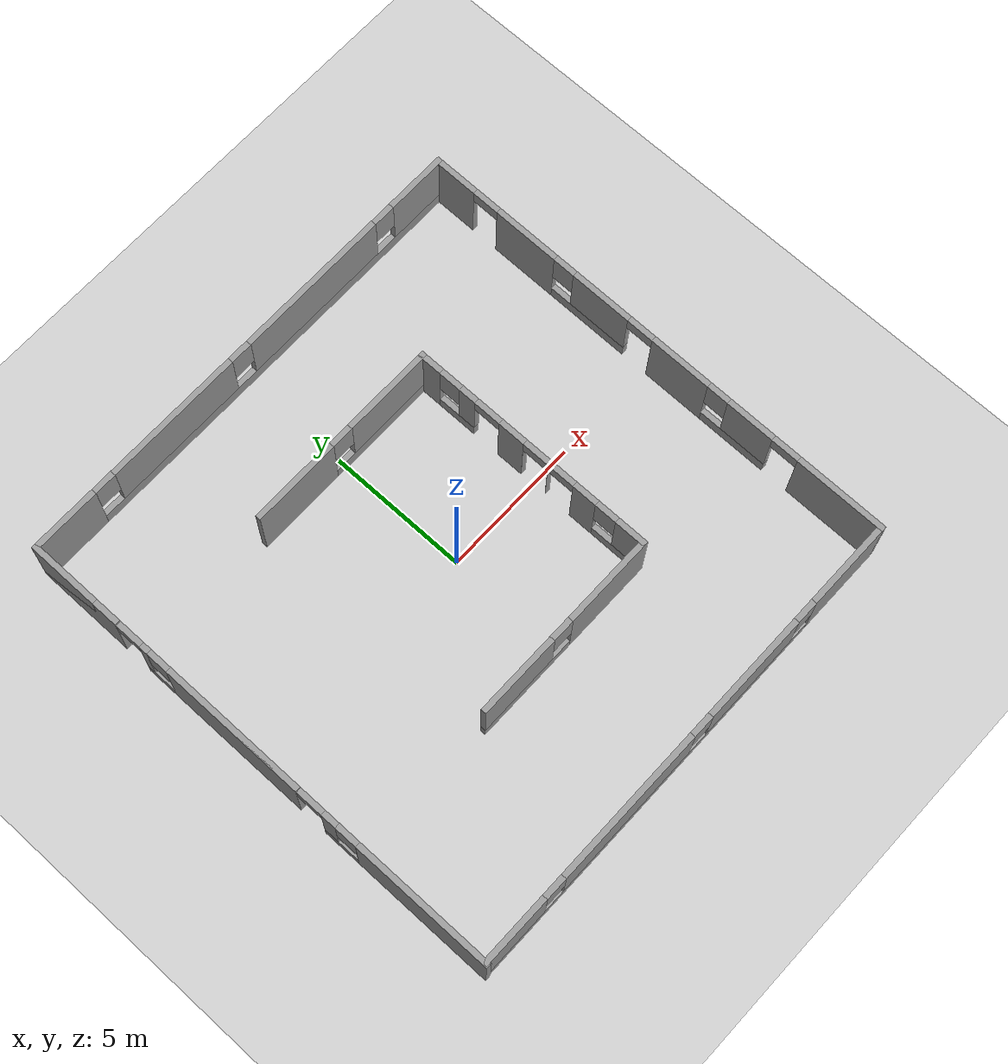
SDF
<sdf version="1.4">
 <world name="default">
  <light name="sun" type="directional">
   <pose>0 0 10 0 -0 0</pose>
   <diffuse>0.8 0.8 0.8 1</diffuse>
   <specular>0.2 0.2 0.2 1</specular>
   <attenuation>
    <range>1000</range>
    <constant>0.9</constant>
    <linear>0.01</linear>
    <quadratic>0.001</quadratic>
   </attenuation>
   <direction>-0.5 0.1 -0.9</direction>
  </light>
  <model name="ground_plane">
   <static>1</static>
   <link name="link">
    <collision name="collision">
     <geometry><plane><normal>0 0 1</normal><size>100 100</size></plane></geometry>
     <surface><friction><ode><mu>100</mu><mu2>50</mu2></ode></friction></surface>
    </collision>
    <visual name="visual">
     <cast_shadows>0</cast_shadows>
     <geometry><plane><normal>0 0 1</normal><size>100 100</size></plane></geometry>
     <material>
      <script><uri>file://media/materials/scripts/gazebo.material</uri><name>Gazebo/Grey</name></script>
     </material>
    </visual>
    <velocity_decay><linear>0</linear><angular>0</angular></velocity_decay>
   </link>
  </model>
  <physics type="ode">
   <max_step_size>0.001</max_step_size>
   <real_time_factor>1</real_time_factor>
   <real_time_update_rate>1000</real_time_update_rate>
   <gravity>0 0 -9.8</gravity>
  </physics>
  <scene><ambient>0.4 0.4 0.4 1</ambient><background>0.7 0.7 0.7 1</background><shadows>1</shadows></scene>
  <spherical_coordinates>
   <surface_model>EARTH_WGS84</surface_model>
   <latitude_deg>0</latitude_deg>
   <longitude_deg>0</longitude_deg>
   <elevation>0</elevation>
   <heading_deg>0</heading_deg>
  </spherical_coordinates>
  <model name="SalaSuporteFormacao">
   <link name="Wall_19">
    <pose>-8.72154 -0.096567 0 0 -0 1.5708</pose>
    <visual name="Wall_19_Visual_0">
     <pose>-6.64198 0 1.25 0 -0 0</pose>
     <geometry><box><size>5.04969 0.2 2.5</size></box></geometry>
     <material>
      <script><uri>file://media/materials/scripts/gazebo.material</uri><name>Gazebo/Grey</name></script>
     </material>
    </visual>
    <collision name="Wall_19_Collision_0">
     <geometry><box><size>5.04969 0.2 2.5</size></box></geometry>
     <pose>-6.64198 0 1.25 0 -0 0</pose>
    </collision>
    <visual name="Wall_19_Visual_1">
     <pose>0.863893 0 1.25 0 -0 0</pose>
     <geometry><box><size>5.24925 0.2 2.5</size></box></geometry>
     <material>
      <script><uri>file://media/materials/scripts/gazebo.material</uri><name>Gazebo/Grey</name></script>
     </material>
    </visual>
    <collision name="Wall_19_Collision_1">
     <geometry><box><size>5.24925 0.2 2.5</size></box></geometry>
     <pose>0.863893 0 1.25 0 -0 0</pose>
    </collision>
    <visual name="Wall_19_Visual_2">
     <pose>1.34936 0 1.25 0 -0 0</pose>
     <geometry><box><size>4.27831 0.2 2.5</size></box></geometry>
     <material>
      <script><uri>file://media/materials/scripts/gazebo.material</uri><name>Gazebo/Grey</name></script>
     </material>
    </visual>
    <collision name="Wall_19_Collision_2">
     <geometry><box><size>4.27831 0.2 2.5</size></box></geometry>
     <pose>1.34936 0 1.25 0 -0 0</pose>
    </collision>
    <visual name="Wall_19_Visual_3">
     <pose>7.3845 0 1.25 0 -0 0</pose>
     <geometry><box><size>3.56464 0.2 2.5</size></box></geometry>
     <material>
      <script><uri>file://media/materials/scripts/gazebo.material</uri><name>Gazebo/Grey</name></script>
     </material>
    </visual>
    <collision name="Wall_19_Collision_3">
     <geometry><box><size>3.56464 0.2 2.5</size></box></geometry>
     <pose>7.3845 0 1.25 0 -0 0</pose>
    </collision>
    <visual name="Wall_19_Visual_4">
     <pose>7.86997 0 1.25 0 -0 0</pose>
     <geometry><box><size>2.59371 0.2 2.5</size></box></geometry>
     <material>
      <script><uri>file://media/materials/scripts/gazebo.material</uri><name>Gazebo/Grey</name></script>
     </material>
    </visual>
    <collision name="Wall_19_Collision_4">
     <geometry><box><size>2.59371 0.2 2.5</size></box></geometry>
     <pose>7.86997 0 1.25 0 -0 0</pose>
    </collision>
    <visual name="Wall_19_Visual_5">
     <pose>-3.43893 0 0.25 0 -0 0</pose>
     <geometry><box><size>1.3564 0.2 0.5</size></box></geometry>
     <material>
      <script><uri>file://media/materials/scripts/gazebo.material</uri><name>Gazebo/Grey</name></script>
     </material>
    </visual>
    <collision name="Wall_19_Collision_5">
     <geometry><box><size>1.3564 0.2 0.5</size></box></geometry>
     <pose>-3.43893 0 0.25 0 -0 0</pose>
    </collision>
    <visual name="Wall_19_Visual_6">
     <pose>4.04535 0 0.25 0 -0 0</pose>
     <geometry><box><size>1.11367 0.2 0.5</size></box></geometry>
     <material>
      <script><uri>file://media/materials/scripts/gazebo.material</uri><name>Gazebo/Grey</name></script>
     </material>
    </visual>
    <collision name="Wall_19_Collision_6">
     <geometry><box><size>1.11367 0.2 0.5</size></box></geometry>
     <pose>4.04535 0 0.25 0 -0 0</pose>
    </collision>
    <visual name="Wall_19_Visual_7">
     <pose>4.04535 0 0.25 0 -0 0</pose>
     <geometry><box><size>1.11367 0.2 0.5</size></box></geometry>
     <material>
      <script><uri>file://media/materials/scripts/gazebo.material</uri><name>Gazebo/Grey</name></script>
     </material>
    </visual>
    <collision name="Wall_19_Collision_7">
     <geometry><box><size>1.11367 0.2 0.5</size></box></geometry>
     <pose>4.04535 0 0.25 0 -0 0</pose>
    </collision>
    <visual name="Wall_19_Visual_8">
     <pose>-3.03893 0 1.5 0 -0 0</pose>
     <geometry><box><size>0.556401 0.2 2</size></box></geometry>
     <material>
      <script><uri>file://media/materials/scripts/gazebo.material</uri><name>Gazebo/Grey</name></script>
     </material>
    </visual>
    <collision name="Wall_19_Collision_8">
     <geometry><box><size>0.556401 0.2 2</size></box></geometry>
     <pose>-3.03893 0 1.5 0 -0 0</pose>
    </collision>
    <visual name="Wall_19_Visual_9">
     <pose>-3.03893 0 1.5 0 -0 0</pose>
     <geometry><box><size>0.556401 0.2 2</size></box></geometry>
     <material>
      <script><uri>file://media/materials/scripts/gazebo.material</uri><name>Gazebo/Grey</name></script>
     </material>
    </visual>
    <collision name="Wall_19_Collision_9">
     <geometry><box><size>0.556401 0.2 2</size></box></geometry>
     <pose>-3.03893 0 1.5 0 -0 0</pose>
    </collision>
    <visual name="Wall_19_Visual_10">
     <pose>4.44535 0 1.5 0 -0 0</pose>
     <geometry><box><size>0.313667 0.2 2</size></box></geometry>
     <material>
      <script><uri>file://media/materials/scripts/gazebo.material</uri><name>Gazebo/Grey</name></script>
     </material>
    </visual>
    <collision name="Wall_19_Collision_10">
     <geometry><box><size>0.313667 0.2 2</size></box></geometry>
     <pose>4.44535 0 1.5 0 -0 0</pose>
    </collision>
    <visual name="Wall_19_Visual_11">
     <pose>4.44535 0 1.5 0 -0 0</pose>
     <geometry><box><size>0.313667 0.2 2</size></box></geometry>
     <material>
      <script><uri>file://media/materials/scripts/gazebo.material</uri><name>Gazebo/Grey</name></script>
     </material>
    </visual>
    <collision name="Wall_19_Collision_11">
     <geometry><box><size>0.313667 0.2 2</size></box></geometry>
     <pose>4.44535 0 1.5 0 -0 0</pose>
    </collision>
    <visual name="Wall_19_Visual_12">
     <pose>-3.71713 0 1.9 0 -0 0</pose>
     <geometry><box><size>0.8 0.2 1.2</size></box></geometry>
     <material>
      <script><uri>file://media/materials/scripts/gazebo.material</uri><name>Gazebo/Grey</name></script>
     </material>
    </visual>
    <collision name="Wall_19_Collision_12">
     <geometry><box><size>0.8 0.2 1.2</size></box></geometry>
     <pose>-3.71713 0 1.9 0 -0 0</pose>
    </collision>
    <visual name="Wall_19_Visual_13">
     <pose>3.88852 0 1.9 0 -0 0</pose>
     <geometry><box><size>0.8 0.2 1.2</size></box></geometry>
     <material>
      <script><uri>file://media/materials/scripts/gazebo.material</uri><name>Gazebo/Grey</name></script>
     </material>
    </visual>
    <collision name="Wall_19_Collision_13">
     <geometry><box><size>0.8 0.2 1.2</size></box></geometry>
     <pose>3.88852 0 1.9 0 -0 0</pose>
    </collision>
    <visual name="Wall_19_Visual_14">
     <pose>3.88852 0 1.9 0 -0 0</pose>
     <geometry><box><size>0.8 0.2 1.2</size></box></geometry>
     <material>
      <script><uri>file://media/materials/scripts/gazebo.material</uri><name>Gazebo/Grey</name></script>
     </material>
    </visual>
    <collision name="Wall_19_Collision_14">
     <geometry><box><size>0.8 0.2 1.2</size></box></geometry>
     <pose>3.88852 0 1.9 0 -0 0</pose>
    </collision>
    <visual name="Wall_19_Visual_15">
     <pose>-2.27526 0 2.25 0 -0 0</pose>
     <geometry><box><size>0.970934 0.2 0.5</size></box></geometry>
     <material>
      <script><uri>file://media/materials/scripts/gazebo.material</uri><name>Gazebo/Grey</name></script>
     </material>
    </visual>
    <collision name="Wall_19_Collision_15">
     <geometry><box><size>0.970934 0.2 0.5</size></box></geometry>
     <pose>-2.27526 0 2.25 0 -0 0</pose>
    </collision>
    <visual name="Wall_19_Visual_16">
     <pose>-2.27526 0 2.25 0 -0 0</pose>
     <geometry><box><size>0.970934 0.2 0.5</size></box></geometry>
     <material>
      <script><uri>file://media/materials/scripts/gazebo.material</uri><name>Gazebo/Grey</name></script>
     </material>
    </visual>
    <collision name="Wall_19_Collision_16">
     <geometry><box><size>0.970934 0.2 0.5</size></box></geometry>
     <pose>-2.27526 0 2.25 0 -0 0</pose>
    </collision>
    <visual name="Wall_19_Visual_17">
     <pose>5.08765 0 2.25 0 -0 0</pose>
     <geometry><box><size>0.970934 0.2 0.5</size></box></geometry>
     <material>
      <script><uri>file://media/materials/scripts/gazebo.material</uri><name>Gazebo/Grey</name></script>
     </material>
    </visual>
    <collision name="Wall_19_Collision_17">
     <geometry><box><size>0.970934 0.2 0.5</size></box></geometry>
     <pose>5.08765 0 2.25 0 -0 0</pose>
    </collision>
    <visual name="Wall_19_Visual_18">
     <pose>5.08765 0 2.25 0 -0 0</pose>
     <geometry><box><size>0.970934 0.2 0.5</size></box></geometry>
     <material>
      <script><uri>file://media/materials/scripts/gazebo.material</uri><name>Gazebo/Grey</name></script>
     </material>
    </visual>
    <collision name="Wall_19_Collision_18">
     <geometry><box><size>0.970934 0.2 0.5</size></box></geometry>
     <pose>5.08765 0 2.25 0 -0 0</pose>
    </collision>
    <velocity_decay><linear>0</linear><angular>0</angular></velocity_decay>
   </link>
   <link name="Wall_20">
    <pose>0.084499 8.97026 0 0 -0 0</pose>
    <visual name="Wall_20_Visual_0">
     <pose>-7.65437 0 1.25 0 -0 0</pose>
     <geometry><box><size>2.50333 0.2 2.5</size></box></geometry>
     <material>
      <script><uri>file://media/materials/scripts/gazebo.material</uri><name>Gazebo/Grey</name></script>
     </material>
    </visual>
    <collision name="Wall_20_Collision_0">
     <geometry><box><size>2.50333 0.2 2.5</size></box></geometry>
     <pose>-7.65437 0 1.25 0 -0 0</pose>
    </collision>
    <visual name="Wall_20_Visual_1">
     <pose>1.25166 0 0.25 0 -0 0</pose>
     <geometry><box><size>15.3087 0.2 0.5</size></box></geometry>
     <material>
      <script><uri>file://media/materials/scripts/gazebo.material</uri><name>Gazebo/Grey</name></script>
     </material>
    </visual>
    <collision name="Wall_20_Collision_1">
     <geometry><box><size>15.3087 0.2 0.5</size></box></geometry>
     <pose>1.25166 0 0.25 0 -0 0</pose>
    </collision>
    <visual name="Wall_20_Visual_2">
     <pose>-3.08991 0 1.5 0 -0 0</pose>
     <geometry><box><size>5.0256 0.2 2</size></box></geometry>
     <material>
      <script><uri>file://media/materials/scripts/gazebo.material</uri><name>Gazebo/Grey</name></script>
     </material>
    </visual>
    <collision name="Wall_20_Collision_2">
     <geometry><box><size>5.0256 0.2 2</size></box></geometry>
     <pose>-3.08991 0 1.5 0 -0 0</pose>
    </collision>
    <visual name="Wall_20_Visual_3">
     <pose>3.01888 0 1.5 0 -0 0</pose>
     <geometry><box><size>5.59198 0.2 2</size></box></geometry>
     <material>
      <script><uri>file://media/materials/scripts/gazebo.material</uri><name>Gazebo/Grey</name></script>
     </material>
    </visual>
    <collision name="Wall_20_Collision_3">
     <geometry><box><size>5.59198 0.2 2</size></box></geometry>
     <pose>3.01888 0 1.5 0 -0 0</pose>
    </collision>
    <visual name="Wall_20_Visual_4">
     <pose>7.76046 0 1.5 0 -0 0</pose>
     <geometry><box><size>2.29116 0.2 2</size></box></geometry>
     <material>
      <script><uri>file://media/materials/scripts/gazebo.material</uri><name>Gazebo/Grey</name></script>
     </material>
    </visual>
    <collision name="Wall_20_Collision_4">
     <geometry><box><size>2.29116 0.2 2</size></box></geometry>
     <pose>7.76046 0 1.5 0 -0 0</pose>
    </collision>
    <visual name="Wall_20_Visual_5">
     <pose>-6.00271 0 1.9 0 -0 0</pose>
     <geometry><box><size>0.8 0.2 1.2</size></box></geometry>
     <material>
      <script><uri>file://media/materials/scripts/gazebo.material</uri><name>Gazebo/Grey</name></script>
     </material>
    </visual>
    <collision name="Wall_20_Collision_5">
     <geometry><box><size>0.8 0.2 1.2</size></box></geometry>
     <pose>-6.00271 0 1.9 0 -0 0</pose>
    </collision>
    <visual name="Wall_20_Visual_6">
     <pose>-0.177107 0 1.9 0 -0 0</pose>
     <geometry><box><size>0.8 0.2 1.2</size></box></geometry>
     <material>
      <script><uri>file://media/materials/scripts/gazebo.material</uri><name>Gazebo/Grey</name></script>
     </material>
    </visual>
    <collision name="Wall_20_Collision_6">
     <geometry><box><size>0.8 0.2 1.2</size></box></geometry>
     <pose>-0.177107 0 1.9 0 -0 0</pose>
    </collision>
    <visual name="Wall_20_Visual_7">
     <pose>6.21487 0 1.9 0 -0 0</pose>
     <geometry><box><size>0.8 0.2 1.2</size></box></geometry>
     <material>
      <script><uri>file://media/materials/scripts/gazebo.material</uri><name>Gazebo/Grey</name></script>
     </material>
    </visual>
    <collision name="Wall_20_Collision_7">
     <geometry><box><size>0.8 0.2 1.2</size></box></geometry>
     <pose>6.21487 0 1.9 0 -0 0</pose>
    </collision>
    <velocity_decay><linear>0</linear><angular>0</angular></velocity_decay>
   </link>
   <link name="Wall_21">
    <pose>8.84401 -0.080624 0 0 0 -1.57594</pose>
    <visual name="Wall_21_Visual_0">
     <pose>-8.29938 0 1.25 0 -0 0</pose>
     <geometry><box><size>1.70325 0.2 2.5</size></box></geometry>
     <material>
      <script><uri>file://media/materials/scripts/gazebo.material</uri><name>Gazebo/Grey</name></script>
     </material>
    </visual>
    <collision name="Wall_21_Collision_0">
     <geometry><box><size>1.70325 0.2 2.5</size></box></geometry>
     <pose>-8.29938 0 1.25 0 -0 0</pose>
    </collision>
    <visual name="Wall_21_Visual_1">
     <pose>-5.23888 0 1.25 0 -0 0</pose>
     <geometry><box><size>2.41773 0.2 2.5</size></box></geometry>
     <material>
      <script><uri>file://media/materials/scripts/gazebo.material</uri><name>Gazebo/Grey</name></script>
     </material>
    </visual>
    <collision name="Wall_21_Collision_1">
     <geometry><box><size>2.41773 0.2 2.5</size></box></geometry>
     <pose>-5.23888 0 1.25 0 -0 0</pose>
    </collision>
    <visual name="Wall_21_Visual_2">
     <pose>1.15301 0 1.25 0 -0 0</pose>
     <geometry><box><size>2.25508 0.2 2.5</size></box></geometry>
     <material>
      <script><uri>file://media/materials/scripts/gazebo.material</uri><name>Gazebo/Grey</name></script>
     </material>
    </visual>
    <collision name="Wall_21_Collision_2">
     <geometry><box><size>2.25508 0.2 2.5</size></box></geometry>
     <pose>1.15301 0 1.25 0 -0 0</pose>
    </collision>
    <visual name="Wall_21_Visual_3">
     <pose>7.501 0 1.25 0 -0 0</pose>
     <geometry><box><size>3.3 0.2 2.5</size></box></geometry>
     <material>
      <script><uri>file://media/materials/scripts/gazebo.material</uri><name>Gazebo/Grey</name></script>
     </material>
    </visual>
    <collision name="Wall_21_Collision_3">
     <geometry><box><size>3.3 0.2 2.5</size></box></geometry>
     <pose>7.501 0 1.25 0 -0 0</pose>
    </collision>
    <visual name="Wall_21_Visual_4">
     <pose>-2.50227 0 0.25 0 -0 0</pose>
     <geometry><box><size>3.05549 0.2 0.5</size></box></geometry>
     <material>
      <script><uri>file://media/materials/scripts/gazebo.material</uri><name>Gazebo/Grey</name></script>
     </material>
    </visual>
    <collision name="Wall_21_Collision_4">
     <geometry><box><size>3.05549 0.2 0.5</size></box></geometry>
     <pose>-2.50227 0 0.25 0 -0 0</pose>
    </collision>
    <visual name="Wall_21_Visual_5">
     <pose>3.56577 0 0.25 0 -0 0</pose>
     <geometry><box><size>2.57045 0.2 0.5</size></box></geometry>
     <material>
      <script><uri>file://media/materials/scripts/gazebo.material</uri><name>Gazebo/Grey</name></script>
     </material>
    </visual>
    <collision name="Wall_21_Collision_5">
     <geometry><box><size>2.57045 0.2 0.5</size></box></geometry>
     <pose>3.56577 0 0.25 0 -0 0</pose>
    </collision>
    <visual name="Wall_21_Visual_6">
     <pose>-2.10227 0 1.5 0 -0 0</pose>
     <geometry><box><size>2.25549 0.2 2</size></box></geometry>
     <material>
      <script><uri>file://media/materials/scripts/gazebo.material</uri><name>Gazebo/Grey</name></script>
     </material>
    </visual>
    <collision name="Wall_21_Collision_6">
     <geometry><box><size>2.25549 0.2 2</size></box></geometry>
     <pose>-2.10227 0 1.5 0 -0 0</pose>
    </collision>
    <visual name="Wall_21_Visual_7">
     <pose>-2.10227 0 1.5 0 -0 0</pose>
     <geometry><box><size>2.25549 0.2 2</size></box></geometry>
     <material>
      <script><uri>file://media/materials/scripts/gazebo.material</uri><name>Gazebo/Grey</name></script>
     </material>
    </visual>
    <collision name="Wall_21_Collision_7">
     <geometry><box><size>2.25549 0.2 2</size></box></geometry>
     <pose>-2.10227 0 1.5 0 -0 0</pose>
    </collision>
    <visual name="Wall_21_Visual_8">
     <pose>3.96577 0 1.5 0 -0 0</pose>
     <geometry><box><size>1.77045 0.2 2</size></box></geometry>
     <material>
      <script><uri>file://media/materials/scripts/gazebo.material</uri><name>Gazebo/Grey</name></script>
     </material>
    </visual>
    <collision name="Wall_21_Collision_8">
     <geometry><box><size>1.77045 0.2 2</size></box></geometry>
     <pose>3.96577 0 1.5 0 -0 0</pose>
    </collision>
    <visual name="Wall_21_Visual_9">
     <pose>-3.63002 0 1.9 0 -0 0</pose>
     <geometry><box><size>0.8 0.2 1.2</size></box></geometry>
     <material>
      <script><uri>file://media/materials/scripts/gazebo.material</uri><name>Gazebo/Grey</name></script>
     </material>
    </visual>
    <collision name="Wall_21_Collision_9">
     <geometry><box><size>0.8 0.2 1.2</size></box></geometry>
     <pose>-3.63002 0 1.9 0 -0 0</pose>
    </collision>
    <visual name="Wall_21_Visual_10">
     <pose>2.68055 0 1.9 0 -0 0</pose>
     <geometry><box><size>0.8 0.2 1.2</size></box></geometry>
     <material>
      <script><uri>file://media/materials/scripts/gazebo.material</uri><name>Gazebo/Grey</name></script>
     </material>
    </visual>
    <collision name="Wall_21_Collision_10">
     <geometry><box><size>0.8 0.2 1.2</size></box></geometry>
     <pose>2.68055 0 1.9 0 -0 0</pose>
    </collision>
    <visual name="Wall_21_Visual_11">
     <pose>-6.94775 0 2.25 0 -0 0</pose>
     <geometry><box><size>1 0.2 0.5</size></box></geometry>
     <material>
      <script><uri>file://media/materials/scripts/gazebo.material</uri><name>Gazebo/Grey</name></script>
     </material>
    </visual>
    <collision name="Wall_21_Collision_11">
     <geometry><box><size>1 0.2 0.5</size></box></geometry>
     <pose>-6.94775 0 2.25 0 -0 0</pose>
    </collision>
    <visual name="Wall_21_Visual_12">
     <pose>-0.474527 0 2.25 0 -0 0</pose>
     <geometry><box><size>1 0.2 0.5</size></box></geometry>
     <material>
      <script><uri>file://media/materials/scripts/gazebo.material</uri><name>Gazebo/Grey</name></script>
     </material>
    </visual>
    <collision name="Wall_21_Collision_12">
     <geometry><box><size>1 0.2 0.5</size></box></geometry>
     <pose>-0.474527 0 2.25 0 -0 0</pose>
    </collision>
    <visual name="Wall_21_Visual_13">
     <pose>-0.474527 0 2.25 0 -0 0</pose>
     <geometry><box><size>1 0.2 0.5</size></box></geometry>
     <material>
      <script><uri>file://media/materials/scripts/gazebo.material</uri><name>Gazebo/Grey</name></script>
     </material>
    </visual>
    <collision name="Wall_21_Collision_13">
     <geometry><box><size>1 0.2 0.5</size></box></geometry>
     <pose>-0.474527 0 2.25 0 -0 0</pose>
    </collision>
    <visual name="Wall_21_Visual_14">
     <pose>5.351 0 2.25 0 -0 0</pose>
     <geometry><box><size>1 0.2 0.5</size></box></geometry>
     <material>
      <script><uri>file://media/materials/scripts/gazebo.material</uri><name>Gazebo/Grey</name></script>
     </material>
    </visual>
    <collision name="Wall_21_Collision_14">
     <geometry><box><size>1 0.2 0.5</size></box></geometry>
     <pose>5.351 0 2.25 0 -0 0</pose>
    </collision>
    <velocity_decay><linear>0</linear><angular>0</angular></velocity_decay>
   </link>
   <link name="Wall_22">
    <pose>0.051604 -9.13151 0 0 -0 3.14159</pose>
    <visual name="Wall_22_Visual_0">
     <pose>-7.2209 0 1.25 0 -0 0</pose>
     <geometry><box><size>3.24996 0.2 2.5</size></box></geometry>
     <material>
      <script><uri>file://media/materials/scripts/gazebo.material</uri><name>Gazebo/Grey</name></script>
     </material>
    </visual>
    <collision name="Wall_22_Collision_0">
     <geometry><box><size>3.24996 0.2 2.5</size></box></geometry>
     <pose>-7.2209 0 1.25 0 -0 0</pose>
    </collision>
    <visual name="Wall_22_Visual_1">
     <pose>1.62498 0 0.25 0 -0 0</pose>
     <geometry><box><size>14.4418 0.2 0.5</size></box></geometry>
     <material>
      <script><uri>file://media/materials/scripts/gazebo.material</uri><name>Gazebo/Grey</name></script>
     </material>
    </visual>
    <collision name="Wall_22_Collision_1">
     <geometry><box><size>14.4418 0.2 0.5</size></box></geometry>
     <pose>1.62498 0 0.25 0 -0 0</pose>
    </collision>
    <visual name="Wall_22_Visual_2">
     <pose>-2.8495 0 1.5 0 -0 0</pose>
     <geometry><box><size>3.89285 0.2 2</size></box></geometry>
     <material>
      <script><uri>file://media/materials/scripts/gazebo.material</uri><name>Gazebo/Grey</name></script>
     </material>
    </visual>
    <collision name="Wall_22_Collision_2">
     <geometry><box><size>3.89285 0.2 2</size></box></geometry>
     <pose>-2.8495 0 1.5 0 -0 0</pose>
    </collision>
    <visual name="Wall_22_Visual_3">
     <pose>2.69291 0 1.5 0 -0 0</pose>
     <geometry><box><size>5.59198 0.2 2</size></box></geometry>
     <material>
      <script><uri>file://media/materials/scripts/gazebo.material</uri><name>Gazebo/Grey</name></script>
     </material>
    </visual>
    <collision name="Wall_22_Collision_3">
     <geometry><box><size>5.59198 0.2 2</size></box></geometry>
     <pose>2.69291 0 1.5 0 -0 0</pose>
    </collision>
    <visual name="Wall_22_Visual_4">
     <pose>7.56739 0 1.5 0 -0 0</pose>
     <geometry><box><size>2.55698 0.2 2</size></box></geometry>
     <material>
      <script><uri>file://media/materials/scripts/gazebo.material</uri><name>Gazebo/Grey</name></script>
     </material>
    </visual>
    <collision name="Wall_22_Collision_4">
     <geometry><box><size>2.55698 0.2 2</size></box></geometry>
     <pose>7.56739 0 1.5 0 -0 0</pose>
    </collision>
    <visual name="Wall_22_Visual_5">
     <pose>-5.19592 0 1.9 0 -0 0</pose>
     <geometry><box><size>0.8 0.2 1.2</size></box></geometry>
     <material>
      <script><uri>file://media/materials/scripts/gazebo.material</uri><name>Gazebo/Grey</name></script>
     </material>
    </visual>
    <collision name="Wall_22_Collision_5">
     <geometry><box><size>0.8 0.2 1.2</size></box></geometry>
     <pose>-5.19592 0 1.9 0 -0 0</pose>
    </collision>
    <visual name="Wall_22_Visual_6">
     <pose>-0.503077 0 1.9 0 -0 0</pose>
     <geometry><box><size>0.8 0.2 1.2</size></box></geometry>
     <material>
      <script><uri>file://media/materials/scripts/gazebo.material</uri><name>Gazebo/Grey</name></script>
     </material>
    </visual>
    <collision name="Wall_22_Collision_6">
     <geometry><box><size>0.8 0.2 1.2</size></box></geometry>
     <pose>-0.503077 0 1.9 0 -0 0</pose>
    </collision>
    <visual name="Wall_22_Visual_7">
     <pose>5.8889 0 1.9 0 -0 0</pose>
     <geometry><box><size>0.8 0.2 1.2</size></box></geometry>
     <material>
      <script><uri>file://media/materials/scripts/gazebo.material</uri><name>Gazebo/Grey</name></script>
     </material>
    </visual>
    <collision name="Wall_22_Collision_7">
     <geometry><box><size>0.8 0.2 1.2</size></box></geometry>
     <pose>5.8889 0 1.9 0 -0 0</pose>
    </collision>
    <velocity_decay><linear>0</linear><angular>0</angular></velocity_decay>
   </link>
   <link name="Wall_24">
    <pose>0.068627 4.76288 0 0 -0 0</pose>
    <visual name="Wall_24_Visual_0">
     <pose>-2.06597 0 1.25 0 -0 0</pose>
     <geometry><box><size>3.19034 0.2 2.5</size></box></geometry>
     <material>
      <script><uri>file://media/materials/scripts/gazebo.material</uri><name>Gazebo/Grey</name></script>
     </material>
    </visual>
    <collision name="Wall_24_Collision_0">
     <geometry><box><size>3.19034 0.2 2.5</size></box></geometry>
     <pose>-2.06597 0 1.25 0 -0 0</pose>
    </collision>
    <visual name="Wall_24_Visual_1">
     <pose>1.59517 0 0.25 0 -0 0</pose>
     <geometry><box><size>4.13194 0.2 0.5</size></box></geometry>
     <material>
      <script><uri>file://media/materials/scripts/gazebo.material</uri><name>Gazebo/Grey</name></script>
     </material>
    </visual>
    <collision name="Wall_24_Collision_1">
     <geometry><box><size>4.13194 0.2 0.5</size></box></geometry>
     <pose>1.59517 0 0.25 0 -0 0</pose>
    </collision>
    <visual name="Wall_24_Visual_2">
     <pose>1.99517 0 1.5 0 -0 0</pose>
     <geometry><box><size>3.33194 0.2 2</size></box></geometry>
     <material>
      <script><uri>file://media/materials/scripts/gazebo.material</uri><name>Gazebo/Grey</name></script>
     </material>
    </visual>
    <collision name="Wall_24_Collision_2">
     <geometry><box><size>3.33194 0.2 2</size></box></geometry>
     <pose>1.99517 0 1.5 0 -0 0</pose>
    </collision>
    <visual name="Wall_24_Visual_3">
     <pose>-0.070799 0 1.9 0 -0 0</pose>
     <geometry><box><size>0.8 0.2 1.2</size></box></geometry>
     <material>
      <script><uri>file://media/materials/scripts/gazebo.material</uri><name>Gazebo/Grey</name></script>
     </material>
    </visual>
    <collision name="Wall_24_Collision_3">
     <geometry><box><size>0.8 0.2 1.2</size></box></geometry>
     <pose>-0.070799 0 1.9 0 -0 0</pose>
    </collision>
    <velocity_decay><linear>0</linear><angular>0</angular></velocity_decay>
   </link>
   <link name="Wall_26">
    <pose>3.62931 0.272315 0 0 0 -1.5708</pose>
    <visual name="Wall_26_Visual_0">
     <pose>-4.13671 0 1.25 0 -0 0</pose>
     <geometry><box><size>0.907729 0.2 2.5</size></box></geometry>
     <material>
      <script><uri>file://media/materials/scripts/gazebo.material</uri><name>Gazebo/Grey</name></script>
     </material>
    </visual>
    <collision name="Wall_26_Collision_0">
     <geometry><box><size>0.907729 0.2 2.5</size></box></geometry>
     <pose>-4.13671 0 1.25 0 -0 0</pose>
    </collision>
    <visual name="Wall_26_Visual_1">
     <pose>-0.739065 0 1.25 0 -0 0</pose>
     <geometry><box><size>1.00105 0.2 2.5</size></box></geometry>
     <material>
      <script><uri>file://media/materials/scripts/gazebo.material</uri><name>Gazebo/Grey</name></script>
     </material>
    </visual>
    <collision name="Wall_26_Collision_1">
     <geometry><box><size>1.00105 0.2 2.5</size></box></geometry>
     <pose>-0.739065 0 1.25 0 -0 0</pose>
    </collision>
    <visual name="Wall_26_Visual_2">
     <pose>-0.24109 0 1.25 0 -0 0</pose>
     <geometry><box><size>0.0051 0.2 2.5</size></box></geometry>
     <material>
      <script><uri>file://media/materials/scripts/gazebo.material</uri><name>Gazebo/Grey</name></script>
     </material>
    </visual>
    <collision name="Wall_26_Collision_2">
     <geometry><box><size>0.0051 0.2 2.5</size></box></geometry>
     <pose>-0.24109 0 1.25 0 -0 0</pose>
    </collision>
    <visual name="Wall_26_Visual_3">
     <pose>0.76401 0 1.25 0 -0 0</pose>
     <geometry><box><size>0.0051 0.2 2.5</size></box></geometry>
     <material>
      <script><uri>file://media/materials/scripts/gazebo.material</uri><name>Gazebo/Grey</name></script>
     </material>
    </visual>
    <collision name="Wall_26_Collision_3">
     <geometry><box><size>0.0051 0.2 2.5</size></box></geometry>
     <pose>0.76401 0 1.25 0 -0 0</pose>
    </collision>
    <visual name="Wall_26_Visual_4">
     <pose>2.21586 0 1.25 0 -0 0</pose>
     <geometry><box><size>0.8986 0.2 2.5</size></box></geometry>
     <material>
      <script><uri>file://media/materials/scripts/gazebo.material</uri><name>Gazebo/Grey</name></script>
     </material>
    </visual>
    <collision name="Wall_26_Collision_4">
     <geometry><box><size>0.8986 0.2 2.5</size></box></geometry>
     <pose>2.21586 0 1.25 0 -0 0</pose>
    </collision>
    <visual name="Wall_26_Visual_5">
     <pose>-2.96122 0 0.25 0 -0 0</pose>
     <geometry><box><size>1.44325 0.2 0.5</size></box></geometry>
     <material>
      <script><uri>file://media/materials/scripts/gazebo.material</uri><name>Gazebo/Grey</name></script>
     </material>
    </visual>
    <collision name="Wall_26_Collision_5">
     <geometry><box><size>1.44325 0.2 0.5</size></box></geometry>
     <pose>-2.96122 0 0.25 0 -0 0</pose>
    </collision>
    <visual name="Wall_26_Visual_6">
     <pose>3.62786 0 0.25 0 -0 0</pose>
     <geometry><box><size>1.92541 0.2 0.5</size></box></geometry>
     <material>
      <script><uri>file://media/materials/scripts/gazebo.material</uri><name>Gazebo/Grey</name></script>
     </material>
    </visual>
    <collision name="Wall_26_Collision_6">
     <geometry><box><size>1.92541 0.2 0.5</size></box></geometry>
     <pose>3.62786 0 0.25 0 -0 0</pose>
    </collision>
    <visual name="Wall_26_Visual_7">
     <pose>-2.56121 0 1.5 0 -0 0</pose>
     <geometry><box><size>0.643251 0.2 2</size></box></geometry>
     <material>
      <script><uri>file://media/materials/scripts/gazebo.material</uri><name>Gazebo/Grey</name></script>
     </material>
    </visual>
    <collision name="Wall_26_Collision_7">
     <geometry><box><size>0.643251 0.2 2</size></box></geometry>
     <pose>-2.56121 0 1.5 0 -0 0</pose>
    </collision>
    <visual name="Wall_26_Visual_8">
     <pose>-2.56121 0 1.5 0 -0 0</pose>
     <geometry><box><size>0.643251 0.2 2</size></box></geometry>
     <material>
      <script><uri>file://media/materials/scripts/gazebo.material</uri><name>Gazebo/Grey</name></script>
     </material>
    </visual>
    <collision name="Wall_26_Collision_8">
     <geometry><box><size>0.643251 0.2 2</size></box></geometry>
     <pose>-2.56121 0 1.5 0 -0 0</pose>
    </collision>
    <visual name="Wall_26_Visual_9">
     <pose>4.02786 0 1.5 0 -0 0</pose>
     <geometry><box><size>1.12541 0.2 2</size></box></geometry>
     <material>
      <script><uri>file://media/materials/scripts/gazebo.material</uri><name>Gazebo/Grey</name></script>
     </material>
    </visual>
    <collision name="Wall_26_Collision_9">
     <geometry><box><size>1.12541 0.2 2</size></box></geometry>
     <pose>4.02786 0 1.5 0 -0 0</pose>
    </collision>
    <visual name="Wall_26_Visual_10">
     <pose>-3.28284 0 1.9 0 -0 0</pose>
     <geometry><box><size>0.8 0.2 1.2</size></box></geometry>
     <material>
      <script><uri>file://media/materials/scripts/gazebo.material</uri><name>Gazebo/Grey</name></script>
     </material>
    </visual>
    <collision name="Wall_26_Collision_10">
     <geometry><box><size>0.8 0.2 1.2</size></box></geometry>
     <pose>-3.28284 0 1.9 0 -0 0</pose>
    </collision>
    <visual name="Wall_26_Visual_11">
     <pose>3.06516 0 1.9 0 -0 0</pose>
     <geometry><box><size>0.8 0.2 1.2</size></box></geometry>
     <material>
      <script><uri>file://media/materials/scripts/gazebo.material</uri><name>Gazebo/Grey</name></script>
     </material>
    </visual>
    <collision name="Wall_26_Collision_11">
     <geometry><box><size>0.8 0.2 1.2</size></box></geometry>
     <pose>3.06516 0 1.9 0 -0 0</pose>
    </collision>
    <visual name="Wall_26_Visual_12">
     <pose>0.26146 0 2.25 0 -0 0</pose>
     <geometry><box><size>1 0.2 0.5</size></box></geometry>
     <material>
      <script><uri>file://media/materials/scripts/gazebo.material</uri><name>Gazebo/Grey</name></script>
     </material>
    </visual>
    <collision name="Wall_26_Collision_12">
     <geometry><box><size>1 0.2 0.5</size></box></geometry>
     <pose>0.26146 0 2.25 0 -0 0</pose>
    </collision>
    <visual name="Wall_26_Visual_13">
     <pose>0.26146 0 2.25 0 -0 0</pose>
     <geometry><box><size>1 0.2 0.5</size></box></geometry>
     <material>
      <script><uri>file://media/materials/scripts/gazebo.material</uri><name>Gazebo/Grey</name></script>
     </material>
    </visual>
    <collision name="Wall_26_Collision_13">
     <geometry><box><size>1 0.2 0.5</size></box></geometry>
     <pose>0.26146 0 2.25 0 -0 0</pose>
    </collision>
    <visual name="Wall_26_Visual_14">
     <pose>1.26656 0 2.25 0 -0 0</pose>
     <geometry><box><size>1 0.2 0.5</size></box></geometry>
     <material>
      <script><uri>file://media/materials/scripts/gazebo.material</uri><name>Gazebo/Grey</name></script>
     </material>
    </visual>
    <collision name="Wall_26_Collision_14">
     <geometry><box><size>1 0.2 0.5</size></box></geometry>
     <pose>1.26656 0 2.25 0 -0 0</pose>
    </collision>
    <visual name="Wall_26_Visual_15">
     <pose>-1.74161 0 2.25 0 -0 0</pose>
     <geometry><box><size>0.99595 0.2 0.5</size></box></geometry>
     <material>
      <script><uri>file://media/materials/scripts/gazebo.material</uri><name>Gazebo/Grey</name></script>
     </material>
    </visual>
    <collision name="Wall_26_Collision_15">
     <geometry><box><size>0.99595 0.2 0.5</size></box></geometry>
     <pose>-1.74161 0 2.25 0 -0 0</pose>
    </collision>
    <visual name="Wall_26_Visual_16">
     <pose>-1.74161 0 2.25 0 -0 0</pose>
     <geometry><box><size>0.99595 0.2 0.5</size></box></geometry>
     <material>
      <script><uri>file://media/materials/scripts/gazebo.material</uri><name>Gazebo/Grey</name></script>
     </material>
    </visual>
    <collision name="Wall_26_Collision_16">
     <geometry><box><size>0.99595 0.2 0.5</size></box></geometry>
     <pose>-1.74161 0 2.25 0 -0 0</pose>
    </collision>
    <velocity_decay><linear>0</linear><angular>0</angular></velocity_decay>
   </link>
   <link name="Wall_27">
    <pose>0.150126 -4.21826 0 0 -0 3.14159</pose>
    <visual name="Wall_27_Visual_0">
     <pose>-1.89858 0 1.25 0 -0 0</pose>
     <geometry><box><size>3.3612 0.2 2.5</size></box></geometry>
     <material>
      <script><uri>file://media/materials/scripts/gazebo.material</uri><name>Gazebo/Grey</name></script>
     </material>
    </visual>
    <collision name="Wall_27_Collision_0">
     <geometry><box><size>3.3612 0.2 2.5</size></box></geometry>
     <pose>-1.89858 0 1.25 0 -0 0</pose>
    </collision>
    <visual name="Wall_27_Visual_1">
     <pose>1.6806 0 0.25 0 -0 0</pose>
     <geometry><box><size>3.79716 0.2 0.5</size></box></geometry>
     <material>
      <script><uri>file://media/materials/scripts/gazebo.material</uri><name>Gazebo/Grey</name></script>
     </material>
    </visual>
    <collision name="Wall_27_Collision_1">
     <geometry><box><size>3.79716 0.2 0.5</size></box></geometry>
     <pose>1.6806 0 0.25 0 -0 0</pose>
    </collision>
    <visual name="Wall_27_Visual_2">
     <pose>2.0806 0 1.5 0 -0 0</pose>
     <geometry><box><size>2.99716 0.2 2</size></box></geometry>
     <material>
      <script><uri>file://media/materials/scripts/gazebo.material</uri><name>Gazebo/Grey</name></script>
     </material>
    </visual>
    <collision name="Wall_27_Collision_2">
     <geometry><box><size>2.99716 0.2 2</size></box></geometry>
     <pose>2.0806 0 1.5 0 -0 0</pose>
    </collision>
    <visual name="Wall_27_Visual_3">
     <pose>0.182023 0 1.9 0 -0 0</pose>
     <geometry><box><size>0.8 0.2 1.2</size></box></geometry>
     <material>
      <script><uri>file://media/materials/scripts/gazebo.material</uri><name>Gazebo/Grey</name></script>
     </material>
    </visual>
    <collision name="Wall_27_Collision_3">
     <geometry><box><size>0.8 0.2 1.2</size></box></geometry>
     <pose>0.182023 0 1.9 0 -0 0</pose>
    </collision>
    <velocity_decay><linear>0</linear><angular>0</angular></velocity_decay>
   </link>
   <static>1</static>
  </model>
 </world>
</sdf>
